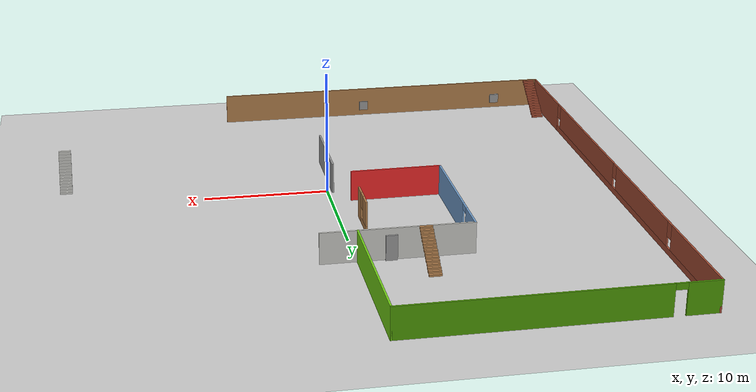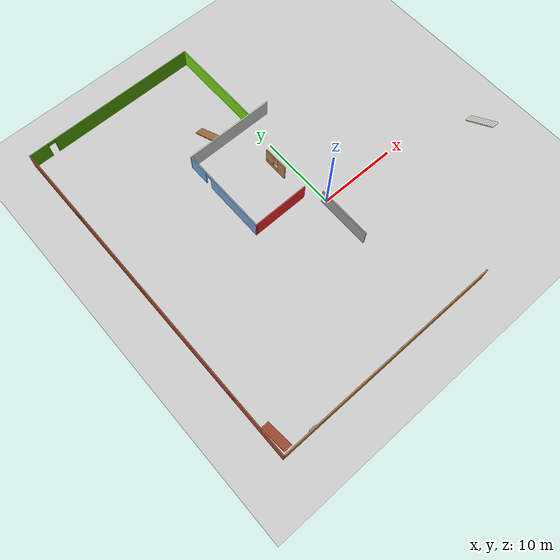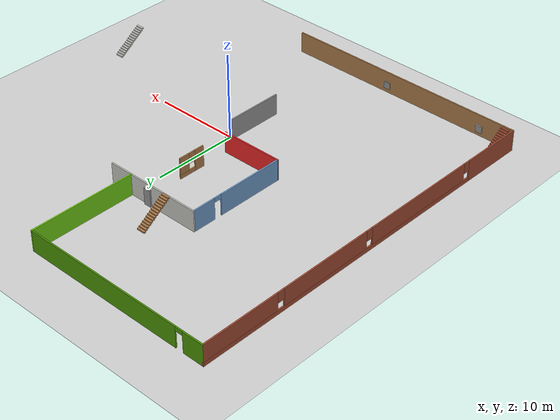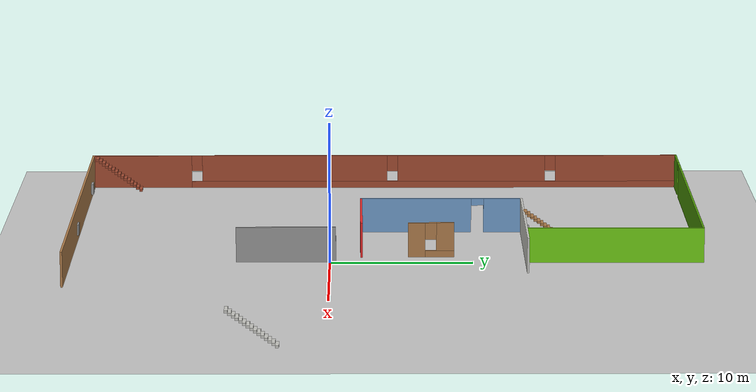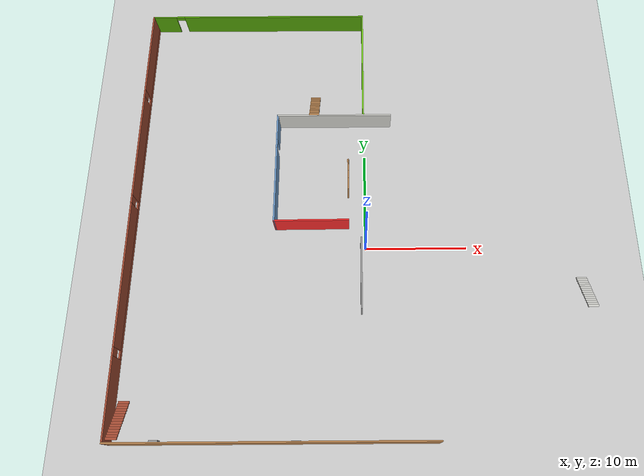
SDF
<sdf version="1.7">
 <world name="default">
  <model name="ground_plane">
   <static>1</static>
   <link name="link">
    <collision name="collision">
     <geometry><plane><normal>0 0 1</normal><size>100 100</size></plane></geometry>
     <surface>
      <contact><collide_bitmask>65535</collide_bitmask></contact>
      <friction><ode><mu>100</mu><mu2>50</mu2></ode></friction>
     </surface>
    </collision>
    <visual name="visual">
     <cast_shadows>0</cast_shadows>
     <geometry><plane><normal>0 0 1</normal><size>100 100</size></plane></geometry>
     <material>
      <script><uri>file://media/materials/scripts/gazebo.material</uri><name>Gazebo/Grey</name></script>
     </material>
    </visual>
   </link>
  </model>
  <model name="pavan">
   <pose>0.117796 3.95267 0 0 -0 0</pose>
   <link name="Door_0">
    <collision name="Door_0_Collision">
     <geometry><box><size>0.9 0.17 2</size></box></geometry>
     <pose>0 0 1 0 -0 0</pose>
    </collision>
    <visual name="Door_0_Visual">
     <pose>0 0 1 0 -0 0</pose>
     <geometry><box><size>0.9 0.17 2</size></box></geometry>
     <material>
      <script><uri>file://media/materials/scripts/gazebo.material</uri><name>Gazebo/Grey</name></script>
     </material>
    </visual>
    <pose>-2.70341 9.99929 0 0 -0 0</pose>
   </link>
   <link name="Stairs_1">
    <visual name="Stairs_1_Visual_0">
     <pose>-22.2721 -18.5444 0.083333 0 -0 0</pose>
     <geometry><box><size>1 0.233333 0.166667</size></box></geometry>
     <material>
      <script><uri>file://media/materials/scripts/gazebo.material</uri><name>Gazebo/Bricks</name></script>
      <ambient>1 1 1 1</ambient>
     </material>
     <meta><layer>0</layer></meta>
    </visual>
    <collision name="Stairs_1_Collision_0">
     <geometry><box><size>1 0.233333 0.166667</size></box></geometry>
     <pose>-22.2721 -18.5444 0.083333 0 -0 0</pose>
    </collision>
    <visual name="Stairs_1_Visual_1">
     <pose>-22.2721 -18.7777 0.25 0 -0 0</pose>
     <geometry><box><size>1 0.233333 0.166667</size></box></geometry>
     <material>
      <script><uri>file://media/materials/scripts/gazebo.material</uri><name>Gazebo/Bricks</name></script>
      <ambient>1 1 1 1</ambient>
     </material>
     <meta><layer>0</layer></meta>
    </visual>
    <collision name="Stairs_1_Collision_1">
     <geometry><box><size>1 0.233333 0.166667</size></box></geometry>
     <pose>-22.2721 -18.7777 0.25 0 -0 0</pose>
    </collision>
    <visual name="Stairs_1_Visual_2">
     <pose>-22.2721 -19.0111 0.416667 0 -0 0</pose>
     <geometry><box><size>1 0.233333 0.166667</size></box></geometry>
     <material>
      <script><uri>file://media/materials/scripts/gazebo.material</uri><name>Gazebo/Bricks</name></script>
      <ambient>1 1 1 1</ambient>
     </material>
     <meta><layer>0</layer></meta>
    </visual>
    <collision name="Stairs_1_Collision_2">
     <geometry><box><size>1 0.233333 0.166667</size></box></geometry>
     <pose>-22.2721 -19.0111 0.416667 0 -0 0</pose>
    </collision>
    <visual name="Stairs_1_Visual_3">
     <pose>-22.2721 -19.2444 0.583333 0 -0 0</pose>
     <geometry><box><size>1 0.233333 0.166667</size></box></geometry>
     <material>
      <script><uri>file://media/materials/scripts/gazebo.material</uri><name>Gazebo/Bricks</name></script>
      <ambient>1 1 1 1</ambient>
     </material>
     <meta><layer>0</layer></meta>
    </visual>
    <collision name="Stairs_1_Collision_3">
     <geometry><box><size>1 0.233333 0.166667</size></box></geometry>
     <pose>-22.2721 -19.2444 0.583333 0 -0 0</pose>
    </collision>
    <visual name="Stairs_1_Visual_4">
     <pose>-22.2721 -19.4777 0.75 0 -0 0</pose>
     <geometry><box><size>1 0.233333 0.166667</size></box></geometry>
     <material>
      <script><uri>file://media/materials/scripts/gazebo.material</uri><name>Gazebo/Bricks</name></script>
      <ambient>1 1 1 1</ambient>
     </material>
     <meta><layer>0</layer></meta>
    </visual>
    <collision name="Stairs_1_Collision_4">
     <geometry><box><size>1 0.233333 0.166667</size></box></geometry>
     <pose>-22.2721 -19.4777 0.75 0 -0 0</pose>
    </collision>
    <visual name="Stairs_1_Visual_5">
     <pose>-22.2721 -19.7111 0.916667 0 -0 0</pose>
     <geometry><box><size>1 0.233333 0.166667</size></box></geometry>
     <material>
      <script><uri>file://media/materials/scripts/gazebo.material</uri><name>Gazebo/Bricks</name></script>
      <ambient>1 1 1 1</ambient>
     </material>
     <meta><layer>0</layer></meta>
    </visual>
    <collision name="Stairs_1_Collision_5">
     <geometry><box><size>1 0.233333 0.166667</size></box></geometry>
     <pose>-22.2721 -19.7111 0.916667 0 -0 0</pose>
    </collision>
    <visual name="Stairs_1_Visual_6">
     <pose>-22.2721 -19.9444 1.08333 0 -0 0</pose>
     <geometry><box><size>1 0.233333 0.166667</size></box></geometry>
     <material>
      <script><uri>file://media/materials/scripts/gazebo.material</uri><name>Gazebo/Bricks</name></script>
      <ambient>1 1 1 1</ambient>
     </material>
     <meta><layer>0</layer></meta>
    </visual>
    <collision name="Stairs_1_Collision_6">
     <geometry><box><size>1 0.233333 0.166667</size></box></geometry>
     <pose>-22.2721 -19.9444 1.08333 0 -0 0</pose>
    </collision>
    <visual name="Stairs_1_Visual_7">
     <pose>-22.2721 -20.1777 1.25 0 -0 0</pose>
     <geometry><box><size>1 0.233333 0.166667</size></box></geometry>
     <material>
      <script><uri>file://media/materials/scripts/gazebo.material</uri><name>Gazebo/Bricks</name></script>
      <ambient>1 1 1 1</ambient>
     </material>
     <meta><layer>0</layer></meta>
    </visual>
    <collision name="Stairs_1_Collision_7">
     <geometry><box><size>1 0.233333 0.166667</size></box></geometry>
     <pose>-22.2721 -20.1777 1.25 0 -0 0</pose>
    </collision>
    <visual name="Stairs_1_Visual_8">
     <pose>-22.2721 -20.4111 1.41667 0 -0 0</pose>
     <geometry><box><size>1 0.233333 0.166667</size></box></geometry>
     <material>
      <script><uri>file://media/materials/scripts/gazebo.material</uri><name>Gazebo/Bricks</name></script>
      <ambient>1 1 1 1</ambient>
     </material>
     <meta><layer>0</layer></meta>
    </visual>
    <collision name="Stairs_1_Collision_8">
     <geometry><box><size>1 0.233333 0.166667</size></box></geometry>
     <pose>-22.2721 -20.4111 1.41667 0 -0 0</pose>
    </collision>
    <visual name="Stairs_1_Visual_9">
     <pose>-22.2721 -20.6444 1.58333 0 -0 0</pose>
     <geometry><box><size>1 0.233333 0.166667</size></box></geometry>
     <material>
      <script><uri>file://media/materials/scripts/gazebo.material</uri><name>Gazebo/Bricks</name></script>
      <ambient>1 1 1 1</ambient>
     </material>
     <meta><layer>0</layer></meta>
    </visual>
    <collision name="Stairs_1_Collision_9">
     <geometry><box><size>1 0.233333 0.166667</size></box></geometry>
     <pose>-22.2721 -20.6444 1.58333 0 -0 0</pose>
    </collision>
    <visual name="Stairs_1_Visual_10">
     <pose>-22.2721 -20.8777 1.75 0 -0 0</pose>
     <geometry><box><size>1 0.233333 0.166667</size></box></geometry>
     <material>
      <script><uri>file://media/materials/scripts/gazebo.material</uri><name>Gazebo/Bricks</name></script>
      <ambient>1 1 1 1</ambient>
     </material>
     <meta><layer>0</layer></meta>
    </visual>
    <collision name="Stairs_1_Collision_10">
     <geometry><box><size>1 0.233333 0.166667</size></box></geometry>
     <pose>-22.2721 -20.8777 1.75 0 -0 0</pose>
    </collision>
    <visual name="Stairs_1_Visual_11">
     <pose>-22.2721 -21.1111 1.91667 0 -0 0</pose>
     <geometry><box><size>1 0.233333 0.166667</size></box></geometry>
     <material>
      <script><uri>file://media/materials/scripts/gazebo.material</uri><name>Gazebo/Bricks</name></script>
      <ambient>1 1 1 1</ambient>
     </material>
     <meta><layer>0</layer></meta>
    </visual>
    <collision name="Stairs_1_Collision_11">
     <geometry><box><size>1 0.233333 0.166667</size></box></geometry>
     <pose>-22.2721 -21.1111 1.91667 0 -0 0</pose>
    </collision>
    <visual name="Stairs_1_Visual_12">
     <pose>-22.2721 -21.3444 2.08333 0 -0 0</pose>
     <geometry><box><size>1 0.233333 0.166667</size></box></geometry>
     <material>
      <script><uri>file://media/materials/scripts/gazebo.material</uri><name>Gazebo/Bricks</name></script>
      <ambient>1 1 1 1</ambient>
     </material>
     <meta><layer>0</layer></meta>
    </visual>
    <collision name="Stairs_1_Collision_12">
     <geometry><box><size>1 0.233333 0.166667</size></box></geometry>
     <pose>-22.2721 -21.3444 2.08333 0 -0 0</pose>
    </collision>
    <visual name="Stairs_1_Visual_13">
     <pose>-22.2721 -21.5777 2.25 0 -0 0</pose>
     <geometry><box><size>1 0.233333 0.166667</size></box></geometry>
     <material>
      <script><uri>file://media/materials/scripts/gazebo.material</uri><name>Gazebo/Bricks</name></script>
      <ambient>1 1 1 1</ambient>
     </material>
     <meta><layer>0</layer></meta>
    </visual>
    <collision name="Stairs_1_Collision_13">
     <geometry><box><size>1 0.233333 0.166667</size></box></geometry>
     <pose>-22.2721 -21.5777 2.25 0 -0 0</pose>
    </collision>
    <visual name="Stairs_1_Visual_14">
     <pose>-22.2721 -21.8111 2.41667 0 -0 0</pose>
     <geometry><box><size>1 0.233333 0.166667</size></box></geometry>
     <material>
      <script><uri>file://media/materials/scripts/gazebo.material</uri><name>Gazebo/Bricks</name></script>
      <ambient>1 1 1 1</ambient>
     </material>
     <meta><layer>0</layer></meta>
    </visual>
    <collision name="Stairs_1_Collision_14">
     <geometry><box><size>1 0.233333 0.166667</size></box></geometry>
     <pose>-22.2721 -21.8111 2.41667 0 -0 0</pose>
    </collision>
   </link>
   <link name="Stairs_2">
    <visual name="Stairs_2_Visual_0">
     <pose>-5.2798 13.213 0.083333 0 -0 0</pose>
     <geometry><box><size>1 0.233333 0.166667</size></box></geometry>
     <material>
      <script><uri>file://media/materials/scripts/gazebo.material</uri><name>Gazebo/Wood</name></script>
      <ambient>1 1 1 1</ambient>
     </material>
     <meta><layer>0</layer></meta>
    </visual>
    <collision name="Stairs_2_Collision_0">
     <geometry><box><size>1 0.233333 0.166667</size></box></geometry>
     <pose>-5.2798 13.213 0.083333 0 -0 0</pose>
    </collision>
    <visual name="Stairs_2_Visual_1">
     <pose>-5.2798 12.9797 0.25 0 -0 0</pose>
     <geometry><box><size>1 0.233333 0.166667</size></box></geometry>
     <material>
      <script><uri>file://media/materials/scripts/gazebo.material</uri><name>Gazebo/Wood</name></script>
      <ambient>1 1 1 1</ambient>
     </material>
     <meta><layer>0</layer></meta>
    </visual>
    <collision name="Stairs_2_Collision_1">
     <geometry><box><size>1 0.233333 0.166667</size></box></geometry>
     <pose>-5.2798 12.9797 0.25 0 -0 0</pose>
    </collision>
    <visual name="Stairs_2_Visual_2">
     <pose>-5.2798 12.7463 0.416667 0 -0 0</pose>
     <geometry><box><size>1 0.233333 0.166667</size></box></geometry>
     <material>
      <script><uri>file://media/materials/scripts/gazebo.material</uri><name>Gazebo/Wood</name></script>
      <ambient>1 1 1 1</ambient>
     </material>
     <meta><layer>0</layer></meta>
    </visual>
    <collision name="Stairs_2_Collision_2">
     <geometry><box><size>1 0.233333 0.166667</size></box></geometry>
     <pose>-5.2798 12.7463 0.416667 0 -0 0</pose>
    </collision>
    <visual name="Stairs_2_Visual_3">
     <pose>-5.2798 12.513 0.583333 0 -0 0</pose>
     <geometry><box><size>1 0.233333 0.166667</size></box></geometry>
     <material>
      <script><uri>file://media/materials/scripts/gazebo.material</uri><name>Gazebo/Wood</name></script>
      <ambient>1 1 1 1</ambient>
     </material>
     <meta><layer>0</layer></meta>
    </visual>
    <collision name="Stairs_2_Collision_3">
     <geometry><box><size>1 0.233333 0.166667</size></box></geometry>
     <pose>-5.2798 12.513 0.583333 0 -0 0</pose>
    </collision>
    <visual name="Stairs_2_Visual_4">
     <pose>-5.2798 12.2797 0.75 0 -0 0</pose>
     <geometry><box><size>1 0.233333 0.166667</size></box></geometry>
     <material>
      <script><uri>file://media/materials/scripts/gazebo.material</uri><name>Gazebo/Wood</name></script>
      <ambient>1 1 1 1</ambient>
     </material>
     <meta><layer>0</layer></meta>
    </visual>
    <collision name="Stairs_2_Collision_4">
     <geometry><box><size>1 0.233333 0.166667</size></box></geometry>
     <pose>-5.2798 12.2797 0.75 0 -0 0</pose>
    </collision>
    <visual name="Stairs_2_Visual_5">
     <pose>-5.2798 12.0463 0.916667 0 -0 0</pose>
     <geometry><box><size>1 0.233333 0.166667</size></box></geometry>
     <material>
      <script><uri>file://media/materials/scripts/gazebo.material</uri><name>Gazebo/Wood</name></script>
      <ambient>1 1 1 1</ambient>
     </material>
     <meta><layer>0</layer></meta>
    </visual>
    <collision name="Stairs_2_Collision_5">
     <geometry><box><size>1 0.233333 0.166667</size></box></geometry>
     <pose>-5.2798 12.0463 0.916667 0 -0 0</pose>
    </collision>
    <visual name="Stairs_2_Visual_6">
     <pose>-5.2798 11.813 1.08333 0 -0 0</pose>
     <geometry><box><size>1 0.233333 0.166667</size></box></geometry>
     <material>
      <script><uri>file://media/materials/scripts/gazebo.material</uri><name>Gazebo/Wood</name></script>
      <ambient>1 1 1 1</ambient>
     </material>
     <meta><layer>0</layer></meta>
    </visual>
    <collision name="Stairs_2_Collision_6">
     <geometry><box><size>1 0.233333 0.166667</size></box></geometry>
     <pose>-5.2798 11.813 1.08333 0 -0 0</pose>
    </collision>
    <visual name="Stairs_2_Visual_7">
     <pose>-5.2798 11.5797 1.25 0 -0 0</pose>
     <geometry><box><size>1 0.233333 0.166667</size></box></geometry>
     <material>
      <script><uri>file://media/materials/scripts/gazebo.material</uri><name>Gazebo/Wood</name></script>
      <ambient>1 1 1 1</ambient>
     </material>
     <meta><layer>0</layer></meta>
    </visual>
    <collision name="Stairs_2_Collision_7">
     <geometry><box><size>1 0.233333 0.166667</size></box></geometry>
     <pose>-5.2798 11.5797 1.25 0 -0 0</pose>
    </collision>
    <visual name="Stairs_2_Visual_8">
     <pose>-5.2798 11.3463 1.41667 0 -0 0</pose>
     <geometry><box><size>1 0.233333 0.166667</size></box></geometry>
     <material>
      <script><uri>file://media/materials/scripts/gazebo.material</uri><name>Gazebo/Wood</name></script>
      <ambient>1 1 1 1</ambient>
     </material>
     <meta><layer>0</layer></meta>
    </visual>
    <collision name="Stairs_2_Collision_8">
     <geometry><box><size>1 0.233333 0.166667</size></box></geometry>
     <pose>-5.2798 11.3463 1.41667 0 -0 0</pose>
    </collision>
    <visual name="Stairs_2_Visual_9">
     <pose>-5.2798 11.113 1.58333 0 -0 0</pose>
     <geometry><box><size>1 0.233333 0.166667</size></box></geometry>
     <material>
      <script><uri>file://media/materials/scripts/gazebo.material</uri><name>Gazebo/Wood</name></script>
      <ambient>1 1 1 1</ambient>
     </material>
     <meta><layer>0</layer></meta>
    </visual>
    <collision name="Stairs_2_Collision_9">
     <geometry><box><size>1 0.233333 0.166667</size></box></geometry>
     <pose>-5.2798 11.113 1.58333 0 -0 0</pose>
    </collision>
    <visual name="Stairs_2_Visual_10">
     <pose>-5.2798 10.8797 1.75 0 -0 0</pose>
     <geometry><box><size>1 0.233333 0.166667</size></box></geometry>
     <material>
      <script><uri>file://media/materials/scripts/gazebo.material</uri><name>Gazebo/Wood</name></script>
      <ambient>1 1 1 1</ambient>
     </material>
     <meta><layer>0</layer></meta>
    </visual>
    <collision name="Stairs_2_Collision_10">
     <geometry><box><size>1 0.233333 0.166667</size></box></geometry>
     <pose>-5.2798 10.8797 1.75 0 -0 0</pose>
    </collision>
    <visual name="Stairs_2_Visual_11">
     <pose>-5.2798 10.6463 1.91667 0 -0 0</pose>
     <geometry><box><size>1 0.233333 0.166667</size></box></geometry>
     <material>
      <script><uri>file://media/materials/scripts/gazebo.material</uri><name>Gazebo/Wood</name></script>
      <ambient>1 1 1 1</ambient>
     </material>
     <meta><layer>0</layer></meta>
    </visual>
    <collision name="Stairs_2_Collision_11">
     <geometry><box><size>1 0.233333 0.166667</size></box></geometry>
     <pose>-5.2798 10.6463 1.91667 0 -0 0</pose>
    </collision>
    <visual name="Stairs_2_Visual_12">
     <pose>-5.2798 10.413 2.08333 0 -0 0</pose>
     <geometry><box><size>1 0.233333 0.166667</size></box></geometry>
     <material>
      <script><uri>file://media/materials/scripts/gazebo.material</uri><name>Gazebo/Wood</name></script>
      <ambient>1 1 1 1</ambient>
     </material>
     <meta><layer>0</layer></meta>
    </visual>
    <collision name="Stairs_2_Collision_12">
     <geometry><box><size>1 0.233333 0.166667</size></box></geometry>
     <pose>-5.2798 10.413 2.08333 0 -0 0</pose>
    </collision>
    <visual name="Stairs_2_Visual_13">
     <pose>-5.2798 10.1797 2.25 0 -0 0</pose>
     <geometry><box><size>1 0.233333 0.166667</size></box></geometry>
     <material>
      <script><uri>file://media/materials/scripts/gazebo.material</uri><name>Gazebo/Wood</name></script>
      <ambient>1 1 1 1</ambient>
     </material>
     <meta><layer>0</layer></meta>
    </visual>
    <collision name="Stairs_2_Collision_13">
     <geometry><box><size>1 0.233333 0.166667</size></box></geometry>
     <pose>-5.2798 10.1797 2.25 0 -0 0</pose>
    </collision>
    <visual name="Stairs_2_Visual_14">
     <pose>-5.2798 9.94634 2.41667 0 -0 0</pose>
     <geometry><box><size>1 0.233333 0.166667</size></box></geometry>
     <material>
      <script><uri>file://media/materials/scripts/gazebo.material</uri><name>Gazebo/Wood</name></script>
      <ambient>1 1 1 1</ambient>
     </material>
     <meta><layer>0</layer></meta>
    </visual>
    <collision name="Stairs_2_Collision_14">
     <geometry><box><size>1 0.233333 0.166667</size></box></geometry>
     <pose>-5.2798 9.94634 2.41667 0 -0 0</pose>
    </collision>
   </link>
   <link name="Stairs_3">
    <visual name="Stairs_3_Visual_0">
     <pose>20.8948 -7.10954 0.083333 0 -0 0</pose>
     <geometry><box><size>1 0.233333 0.166667</size></box></geometry>
     <material>
      <script><uri>file://media/materials/scripts/gazebo.material</uri><name>Gazebo/CeilingTiled</name></script>
      <ambient>1 1 1 1</ambient>
     </material>
     <meta><layer>0</layer></meta>
    </visual>
    <collision name="Stairs_3_Collision_0">
     <geometry><box><size>1 0.233333 0.166667</size></box></geometry>
     <pose>20.8948 -7.10954 0.083333 0 -0 0</pose>
    </collision>
    <visual name="Stairs_3_Visual_1">
     <pose>20.8948 -7.34288 0.25 0 -0 0</pose>
     <geometry><box><size>1 0.233333 0.166667</size></box></geometry>
     <material>
      <script><uri>file://media/materials/scripts/gazebo.material</uri><name>Gazebo/CeilingTiled</name></script>
      <ambient>1 1 1 1</ambient>
     </material>
     <meta><layer>0</layer></meta>
    </visual>
    <collision name="Stairs_3_Collision_1">
     <geometry><box><size>1 0.233333 0.166667</size></box></geometry>
     <pose>20.8948 -7.34288 0.25 0 -0 0</pose>
    </collision>
    <visual name="Stairs_3_Visual_2">
     <pose>20.8948 -7.57621 0.416667 0 -0 0</pose>
     <geometry><box><size>1 0.233333 0.166667</size></box></geometry>
     <material>
      <script><uri>file://media/materials/scripts/gazebo.material</uri><name>Gazebo/CeilingTiled</name></script>
      <ambient>1 1 1 1</ambient>
     </material>
     <meta><layer>0</layer></meta>
    </visual>
    <collision name="Stairs_3_Collision_2">
     <geometry><box><size>1 0.233333 0.166667</size></box></geometry>
     <pose>20.8948 -7.57621 0.416667 0 -0 0</pose>
    </collision>
    <visual name="Stairs_3_Visual_3">
     <pose>20.8948 -7.80954 0.583333 0 -0 0</pose>
     <geometry><box><size>1 0.233333 0.166667</size></box></geometry>
     <material>
      <script><uri>file://media/materials/scripts/gazebo.material</uri><name>Gazebo/CeilingTiled</name></script>
      <ambient>1 1 1 1</ambient>
     </material>
     <meta><layer>0</layer></meta>
    </visual>
    <collision name="Stairs_3_Collision_3">
     <geometry><box><size>1 0.233333 0.166667</size></box></geometry>
     <pose>20.8948 -7.80954 0.583333 0 -0 0</pose>
    </collision>
    <visual name="Stairs_3_Visual_4">
     <pose>20.8948 -8.04287 0.75 0 -0 0</pose>
     <geometry><box><size>1 0.233333 0.166667</size></box></geometry>
     <material>
      <script><uri>file://media/materials/scripts/gazebo.material</uri><name>Gazebo/CeilingTiled</name></script>
      <ambient>1 1 1 1</ambient>
     </material>
     <meta><layer>0</layer></meta>
    </visual>
    <collision name="Stairs_3_Collision_4">
     <geometry><box><size>1 0.233333 0.166667</size></box></geometry>
     <pose>20.8948 -8.04287 0.75 0 -0 0</pose>
    </collision>
    <visual name="Stairs_3_Visual_5">
     <pose>20.8948 -8.27621 0.916667 0 -0 0</pose>
     <geometry><box><size>1 0.233333 0.166667</size></box></geometry>
     <material>
      <script><uri>file://media/materials/scripts/gazebo.material</uri><name>Gazebo/CeilingTiled</name></script>
      <ambient>1 1 1 1</ambient>
     </material>
     <meta><layer>0</layer></meta>
    </visual>
    <collision name="Stairs_3_Collision_5">
     <geometry><box><size>1 0.233333 0.166667</size></box></geometry>
     <pose>20.8948 -8.27621 0.916667 0 -0 0</pose>
    </collision>
    <visual name="Stairs_3_Visual_6">
     <pose>20.8948 -8.50954 1.08333 0 -0 0</pose>
     <geometry><box><size>1 0.233333 0.166667</size></box></geometry>
     <material>
      <script><uri>file://media/materials/scripts/gazebo.material</uri><name>Gazebo/CeilingTiled</name></script>
      <ambient>1 1 1 1</ambient>
     </material>
     <meta><layer>0</layer></meta>
    </visual>
    <collision name="Stairs_3_Collision_6">
     <geometry><box><size>1 0.233333 0.166667</size></box></geometry>
     <pose>20.8948 -8.50954 1.08333 0 -0 0</pose>
    </collision>
    <visual name="Stairs_3_Visual_7">
     <pose>20.8948 -8.74287 1.25 0 -0 0</pose>
     <geometry><box><size>1 0.233333 0.166667</size></box></geometry>
     <material>
      <script><uri>file://media/materials/scripts/gazebo.material</uri><name>Gazebo/CeilingTiled</name></script>
      <ambient>1 1 1 1</ambient>
     </material>
     <meta><layer>0</layer></meta>
    </visual>
    <collision name="Stairs_3_Collision_7">
     <geometry><box><size>1 0.233333 0.166667</size></box></geometry>
     <pose>20.8948 -8.74287 1.25 0 -0 0</pose>
    </collision>
    <visual name="Stairs_3_Visual_8">
     <pose>20.8948 -8.97621 1.41667 0 -0 0</pose>
     <geometry><box><size>1 0.233333 0.166667</size></box></geometry>
     <material>
      <script><uri>file://media/materials/scripts/gazebo.material</uri><name>Gazebo/CeilingTiled</name></script>
      <ambient>1 1 1 1</ambient>
     </material>
     <meta><layer>0</layer></meta>
    </visual>
    <collision name="Stairs_3_Collision_8">
     <geometry><box><size>1 0.233333 0.166667</size></box></geometry>
     <pose>20.8948 -8.97621 1.41667 0 -0 0</pose>
    </collision>
    <visual name="Stairs_3_Visual_9">
     <pose>20.8948 -9.20954 1.58333 0 -0 0</pose>
     <geometry><box><size>1 0.233333 0.166667</size></box></geometry>
     <material>
      <script><uri>file://media/materials/scripts/gazebo.material</uri><name>Gazebo/CeilingTiled</name></script>
      <ambient>1 1 1 1</ambient>
     </material>
     <meta><layer>0</layer></meta>
    </visual>
    <collision name="Stairs_3_Collision_9">
     <geometry><box><size>1 0.233333 0.166667</size></box></geometry>
     <pose>20.8948 -9.20954 1.58333 0 -0 0</pose>
    </collision>
    <visual name="Stairs_3_Visual_10">
     <pose>20.8948 -9.44287 1.75 0 -0 0</pose>
     <geometry><box><size>1 0.233333 0.166667</size></box></geometry>
     <material>
      <script><uri>file://media/materials/scripts/gazebo.material</uri><name>Gazebo/CeilingTiled</name></script>
      <ambient>1 1 1 1</ambient>
     </material>
     <meta><layer>0</layer></meta>
    </visual>
    <collision name="Stairs_3_Collision_10">
     <geometry><box><size>1 0.233333 0.166667</size></box></geometry>
     <pose>20.8948 -9.44287 1.75 0 -0 0</pose>
    </collision>
    <visual name="Stairs_3_Visual_11">
     <pose>20.8948 -9.67621 1.91667 0 -0 0</pose>
     <geometry><box><size>1 0.233333 0.166667</size></box></geometry>
     <material>
      <script><uri>file://media/materials/scripts/gazebo.material</uri><name>Gazebo/CeilingTiled</name></script>
      <ambient>1 1 1 1</ambient>
     </material>
     <meta><layer>0</layer></meta>
    </visual>
    <collision name="Stairs_3_Collision_11">
     <geometry><box><size>1 0.233333 0.166667</size></box></geometry>
     <pose>20.8948 -9.67621 1.91667 0 -0 0</pose>
    </collision>
    <visual name="Stairs_3_Visual_12">
     <pose>20.8948 -9.90954 2.08333 0 -0 0</pose>
     <geometry><box><size>1 0.233333 0.166667</size></box></geometry>
     <material>
      <script><uri>file://media/materials/scripts/gazebo.material</uri><name>Gazebo/CeilingTiled</name></script>
      <ambient>1 1 1 1</ambient>
     </material>
     <meta><layer>0</layer></meta>
    </visual>
    <collision name="Stairs_3_Collision_12">
     <geometry><box><size>1 0.233333 0.166667</size></box></geometry>
     <pose>20.8948 -9.90954 2.08333 0 -0 0</pose>
    </collision>
    <visual name="Stairs_3_Visual_13">
     <pose>20.8948 -10.1429 2.25 0 -0 0</pose>
     <geometry><box><size>1 0.233333 0.166667</size></box></geometry>
     <material>
      <script><uri>file://media/materials/scripts/gazebo.material</uri><name>Gazebo/CeilingTiled</name></script>
      <ambient>1 1 1 1</ambient>
     </material>
     <meta><layer>0</layer></meta>
    </visual>
    <collision name="Stairs_3_Collision_13">
     <geometry><box><size>1 0.233333 0.166667</size></box></geometry>
     <pose>20.8948 -10.1429 2.25 0 -0 0</pose>
    </collision>
    <visual name="Stairs_3_Visual_14">
     <pose>20.8948 -10.3762 2.41667 0 -0 0</pose>
     <geometry><box><size>1 0.233333 0.166667</size></box></geometry>
     <material>
      <script><uri>file://media/materials/scripts/gazebo.material</uri><name>Gazebo/CeilingTiled</name></script>
      <ambient>1 1 1 1</ambient>
     </material>
     <meta><layer>0</layer></meta>
    </visual>
    <collision name="Stairs_3_Collision_14">
     <geometry><box><size>1 0.233333 0.166667</size></box></geometry>
     <pose>20.8948 -10.3762 2.41667 0 -0 0</pose>
    </collision>
   </link>
   <link name="Wall_14">
    <collision name="Wall_14_Collision">
     <geometry><box><size>7 0.15 2.5</size></box></geometry>
     <pose>0 0 1.25 0 -0 0</pose>
    </collision>
    <visual name="Wall_14_Visual">
     <pose>0 0 1.25 0 -0 0</pose>
     <geometry><box><size>7 0.15 2.5</size></box></geometry>
     <material>
      <script><uri>file://media/materials/scripts/gazebo.material</uri><name>Gazebo/Grey</name></script>
      <ambient>0.333333 0.341176 0.32549 1</ambient>
     </material>
     <meta><layer>0</layer></meta>
    </visual>
    <pose>-0.534699 -7.02943 0 0 -0 -1.5708</pose>
   </link>
   <link name="Wall_21">
    <collision name="Wall_21_Collision">
     <geometry><box><size>29.5 0.15 2.5</size></box></geometry>
     <pose>0 0 1.25 0 -0 0</pose>
    </collision>
    <visual name="Wall_21_Visual">
     <pose>0 0 1.25 0 -0 0</pose>
     <geometry><box><size>29.5 0.15 2.5</size></box></geometry>
     <material>
      <script><uri>file://media/materials/scripts/gazebo.material</uri><name>Gazebo/Wood</name></script>
      <ambient>1 1 1 1</ambient>
     </material>
     <meta><layer>0</layer></meta>
    </visual>
    <pose>-8.3903 -22.175 0 0 -0 3.14159</pose>
   </link>
   <link name="Wall_22">
    <pose>-23.0653 -0 0 0 -0 1.5708</pose>
    <visual name="Wall_22_Visual_0">
     <pose>-18.4797 0 1.25 0 -0 0</pose>
     <geometry><box><size>7.54061 0.15 2.5</size></box></geometry>
     <material>
      <script><uri>file://media/materials/scripts/gazebo.material</uri><name>Gazebo/Bricks</name></script>
      <ambient>1 1 1 1</ambient>
     </material>
     <meta><layer>0</layer></meta>
    </visual>
    <collision name="Wall_22_Collision_0">
     <geometry><box><size>7.54061 0.15 2.5</size></box></geometry>
     <pose>-18.4797 0 1.25 0 -0 0</pose>
    </collision>
    <visual name="Wall_22_Visual_1">
     <pose>3.77031 0 0.25 0 -0 0</pose>
     <geometry><box><size>36.9594 0.15 0.5</size></box></geometry>
     <material>
      <script><uri>file://media/materials/scripts/gazebo.material</uri><name>Gazebo/Bricks</name></script>
      <ambient>1 1 1 1</ambient>
     </material>
     <meta><layer>0</layer></meta>
    </visual>
    <collision name="Wall_22_Collision_1">
     <geometry><box><size>36.9594 0.15 0.5</size></box></geometry>
     <pose>3.77031 0 0.25 0 -0 0</pose>
    </collision>
    <visual name="Wall_22_Visual_2">
     <pose>-6.86133 0 1.5 0 -0 0</pose>
     <geometry><box><size>14.0961 0.15 2</size></box></geometry>
     <material>
      <script><uri>file://media/materials/scripts/gazebo.material</uri><name>Gazebo/Bricks</name></script>
      <ambient>1 1 1 1</ambient>
     </material>
     <meta><layer>0</layer></meta>
    </visual>
    <collision name="Wall_22_Collision_2">
     <geometry><box><size>14.0961 0.15 2</size></box></geometry>
     <pose>-6.86133 0 1.5 0 -0 0</pose>
    </collision>
    <visual name="Wall_22_Visual_3">
     <pose>6.59837 0 1.5 0 -0 0</pose>
     <geometry><box><size>11.2233 0.15 2</size></box></geometry>
     <material>
      <script><uri>file://media/materials/scripts/gazebo.material</uri><name>Gazebo/Bricks</name></script>
      <ambient>1 1 1 1</ambient>
     </material>
     <meta><layer>0</layer></meta>
    </visual>
    <collision name="Wall_22_Collision_3">
     <geometry><box><size>11.2233 0.15 2</size></box></geometry>
     <pose>6.59837 0 1.5 0 -0 0</pose>
    </collision>
    <visual name="Wall_22_Visual_4">
     <pose>17.63 0 1.5 0 -0 0</pose>
     <geometry><box><size>9.23998 0.15 2</size></box></geometry>
     <material>
      <script><uri>file://media/materials/scripts/gazebo.material</uri><name>Gazebo/Bricks</name></script>
      <ambient>1 1 1 1</ambient>
     </material>
     <meta><layer>0</layer></meta>
    </visual>
    <collision name="Wall_22_Collision_4">
     <geometry><box><size>9.23998 0.15 2</size></box></geometry>
     <pose>17.63 0 1.5 0 -0 0</pose>
    </collision>
    <visual name="Wall_22_Visual_5">
     <pose>-14.3094 0 1.9 0 -0 0</pose>
     <geometry><box><size>0.8 0.15 1.2</size></box></geometry>
     <material>
      <script><uri>file://media/materials/scripts/gazebo.material</uri><name>Gazebo/Bricks</name></script>
      <ambient>1 1 1 1</ambient>
     </material>
     <meta><layer>0</layer></meta>
    </visual>
    <collision name="Wall_22_Collision_5">
     <geometry><box><size>0.8 0.15 1.2</size></box></geometry>
     <pose>-14.3094 0 1.9 0 -0 0</pose>
    </collision>
    <visual name="Wall_22_Visual_6">
     <pose>0.586727 0 1.9 0 -0 0</pose>
     <geometry><box><size>0.8 0.15 1.2</size></box></geometry>
     <material>
      <script><uri>file://media/materials/scripts/gazebo.material</uri><name>Gazebo/Bricks</name></script>
      <ambient>1 1 1 1</ambient>
     </material>
     <meta><layer>0</layer></meta>
    </visual>
    <collision name="Wall_22_Collision_6">
     <geometry><box><size>0.8 0.15 1.2</size></box></geometry>
     <pose>0.586727 0 1.9 0 -0 0</pose>
    </collision>
    <visual name="Wall_22_Visual_7">
     <pose>12.61 0 1.9 0 -0 0</pose>
     <geometry><box><size>0.8 0.15 1.2</size></box></geometry>
     <material>
      <script><uri>file://media/materials/scripts/gazebo.material</uri><name>Gazebo/Bricks</name></script>
      <ambient>1 1 1 1</ambient>
     </material>
     <meta><layer>0</layer></meta>
    </visual>
    <collision name="Wall_22_Collision_7">
     <geometry><box><size>0.8 0.15 1.2</size></box></geometry>
     <pose>12.61 0 1.9 0 -0 0</pose>
    </collision>
   </link>
   <link name="Wall_23">
    <pose>-11.6403 22.175 0 0 -0 0</pose>
    <visual name="Wall_23_Visual_0">
     <pose>-10.2308 0 1.25 0 -0 0</pose>
     <geometry><box><size>2.53833 0.15 2.5</size></box></geometry>
     <material>
      <script><uri>file://media/materials/scripts/gazebo.material</uri><name>Gazebo/Grey</name></script>
      <ambient>0.305882 0.603922 0.0235294 1</ambient>
     </material>
     <meta><layer>0</layer></meta>
    </visual>
    <collision name="Wall_23_Collision_0">
     <geometry><box><size>2.53833 0.15 2.5</size></box></geometry>
     <pose>-10.2308 0 1.25 0 -0 0</pose>
    </collision>
    <visual name="Wall_23_Visual_1">
     <pose>1.71917 0 1.25 0 -0 0</pose>
     <geometry><box><size>19.5617 0.15 2.5</size></box></geometry>
     <material>
      <script><uri>file://media/materials/scripts/gazebo.material</uri><name>Gazebo/Grey</name></script>
      <ambient>0.305882 0.603922 0.0235294 1</ambient>
     </material>
     <meta><layer>0</layer></meta>
    </visual>
    <collision name="Wall_23_Collision_1">
     <geometry><box><size>19.5617 0.15 2.5</size></box></geometry>
     <pose>1.71917 0 1.25 0 -0 0</pose>
    </collision>
    <visual name="Wall_23_Visual_2">
     <pose>-8.51167 0 2.25 0 -0 0</pose>
     <geometry><box><size>0.9 0.15 0.5</size></box></geometry>
     <material>
      <script><uri>file://media/materials/scripts/gazebo.material</uri><name>Gazebo/Grey</name></script>
      <ambient>0.305882 0.603922 0.0235294 1</ambient>
     </material>
     <meta><layer>0</layer></meta>
    </visual>
    <collision name="Wall_23_Collision_2">
     <geometry><box><size>0.9 0.15 0.5</size></box></geometry>
     <pose>-8.51167 0 2.25 0 -0 0</pose>
    </collision>
   </link>
   <link name="Wall_24">
    <collision name="Wall_24_Collision">
     <geometry><box><size>12.5 0.15 2.5</size></box></geometry>
     <pose>0 0 1.25 0 -0 0</pose>
    </collision>
    <visual name="Wall_24_Visual">
     <pose>0 0 1.25 0 -0 0</pose>
     <geometry><box><size>12.5 0.15 2.5</size></box></geometry>
     <material>
      <script><uri>file://media/materials/scripts/gazebo.material</uri><name>Gazebo/Grey</name></script>
      <ambient>0.45098 0.823529 0.0862745 1</ambient>
     </material>
     <meta><layer>0</layer></meta>
    </visual>
    <pose>-0.215298 16 0 0 -0 -1.5708</pose>
   </link>
   <link name="Wall_3">
    <pose>-1.77977 3.16124 0 0 -0 1.5708</pose>
    <visual name="Wall_3_Visual_0">
     <pose>-1.02841 0 1.25 0 -0 0</pose>
     <geometry><box><size>1.19319 0.15 2.5</size></box></geometry>
     <material>
      <script><uri>file://media/materials/scripts/gazebo.material</uri><name>Gazebo/Wood</name></script>
      <ambient>1 1 1 1</ambient>
     </material>
     <meta><layer>0</layer></meta>
    </visual>
    <collision name="Wall_3_Collision_0">
     <geometry><box><size>1.19319 0.15 2.5</size></box></geometry>
     <pose>-1.02841 0 1.25 0 -0 0</pose>
    </collision>
    <visual name="Wall_3_Visual_1">
     <pose>0.596593 0 0.25 0 -0 0</pose>
     <geometry><box><size>2.05681 0.15 0.5</size></box></geometry>
     <material>
      <script><uri>file://media/materials/scripts/gazebo.material</uri><name>Gazebo/Wood</name></script>
      <ambient>1 1 1 1</ambient>
     </material>
     <meta><layer>0</layer></meta>
    </visual>
    <collision name="Wall_3_Collision_1">
     <geometry><box><size>2.05681 0.15 0.5</size></box></geometry>
     <pose>0.596593 0 0.25 0 -0 0</pose>
    </collision>
    <visual name="Wall_3_Visual_2">
     <pose>0.996593 0 1.5 0 -0 0</pose>
     <geometry><box><size>1.25681 0.15 2</size></box></geometry>
     <material>
      <script><uri>file://media/materials/scripts/gazebo.material</uri><name>Gazebo/Wood</name></script>
      <ambient>1 1 1 1</ambient>
     </material>
     <meta><layer>0</layer></meta>
    </visual>
    <collision name="Wall_3_Collision_2">
     <geometry><box><size>1.25681 0.15 2</size></box></geometry>
     <pose>0.996593 0 1.5 0 -0 0</pose>
    </collision>
    <visual name="Wall_3_Visual_3">
     <pose>-0.031813 0 1.9 0 -0 0</pose>
     <geometry><box><size>0.8 0.15 1.2</size></box></geometry>
     <material>
      <script><uri>file://media/materials/scripts/gazebo.material</uri><name>Gazebo/Wood</name></script>
      <ambient>1 1 1 1</ambient>
     </material>
     <meta><layer>0</layer></meta>
    </visual>
    <collision name="Wall_3_Collision_3">
     <geometry><box><size>0.8 0.15 1.2</size></box></geometry>
     <pose>-0.031813 0 1.9 0 -0 0</pose>
    </collision>
   </link>
   <link name="Wall_6">
    <collision name="Wall_6_Collision">
     <geometry><box><size>11.75 0.15 2.5</size></box></geometry>
     <pose>0 0 1.25 0 -0 0</pose>
    </collision>
    <visual name="Wall_6_Visual">
     <pose>0 0 1.25 0 -0 0</pose>
     <geometry><box><size>11.75 0.15 2.5</size></box></geometry>
     <material>
      <script><uri>file://media/materials/scripts/gazebo.material</uri><name>Gazebo/CeilingTiled</name></script>
      <ambient>0.435294 0.796078 0.67451 1</ambient>
     </material>
     <meta><layer>0</layer></meta>
    </visual>
    <pose>-3.22977 9.81124 0 0 -0 3.14159</pose>
   </link>
   <link name="Wall_7">
    <pose>-9.02977 4.01124 0 0 -0 -1.5708</pose>
    <visual name="Wall_7_Visual_0">
     <pose>-4.46729 0 1.25 0 -0 0</pose>
     <geometry><box><size>2.81541 0.15 2.5</size></box></geometry>
     <material>
      <script><uri>file://media/materials/scripts/gazebo.material</uri><name>Gazebo/Grey</name></script>
      <ambient>0.447059 0.623529 0.811765 1</ambient>
     </material>
     <meta><layer>0</layer></meta>
    </visual>
    <collision name="Wall_7_Collision_0">
     <geometry><box><size>2.81541 0.15 2.5</size></box></geometry>
     <pose>-4.46729 0 1.25 0 -0 0</pose>
    </collision>
    <visual name="Wall_7_Visual_1">
     <pose>1.85771 0 1.25 0 -0 0</pose>
     <geometry><box><size>8.03459 0.15 2.5</size></box></geometry>
     <material>
      <script><uri>file://media/materials/scripts/gazebo.material</uri><name>Gazebo/Grey</name></script>
      <ambient>0.447059 0.623529 0.811765 1</ambient>
     </material>
     <meta><layer>0</layer></meta>
    </visual>
    <collision name="Wall_7_Collision_1">
     <geometry><box><size>8.03459 0.15 2.5</size></box></geometry>
     <pose>1.85771 0 1.25 0 -0 0</pose>
    </collision>
    <visual name="Wall_7_Visual_2">
     <pose>-2.60959 0 2.25 0 -0 0</pose>
     <geometry><box><size>0.9 0.15 0.5</size></box></geometry>
     <material>
      <script><uri>file://media/materials/scripts/gazebo.material</uri><name>Gazebo/Grey</name></script>
      <ambient>0.447059 0.623529 0.811765 1</ambient>
     </material>
     <meta><layer>0</layer></meta>
    </visual>
    <collision name="Wall_7_Collision_2">
     <geometry><box><size>0.9 0.15 0.5</size></box></geometry>
     <pose>-2.60959 0 2.25 0 -0 0</pose>
    </collision>
   </link>
   <link name="Wall_8">
    <collision name="Wall_8_Collision">
     <geometry><box><size>7.40017 0.15 2.5</size></box></geometry>
     <pose>0 0 1.25 0 -0 0</pose>
    </collision>
    <visual name="Wall_8_Visual">
     <pose>0 0 1.25 0 -0 0</pose>
     <geometry><box><size>7.40017 0.15 2.5</size></box></geometry>
     <material>
      <script><uri>file://media/materials/scripts/gazebo.material</uri><name>Gazebo/Grey</name></script>
      <ambient>0.937255 0.160784 0.160784 1</ambient>
     </material>
     <meta><layer>0</layer></meta>
    </visual>
    <pose>-5.40477 -1.76376 0 0 -0 0.006896</pose>
   </link>
   <link name="Window_10">
    <collision name="Window_10_Collision">
     <geometry><box><size>0.8 0.17 0.8</size></box></geometry>
     <pose>0 0 0.4 0 -0 0</pose>
    </collision>
    <visual name="Window_10_Visual">
     <pose>0 0 0.4 0 -0 0</pose>
     <geometry><box><size>0.8 0.17 0.8</size></box></geometry>
     <material>
      <script><uri>file://media/materials/scripts/gazebo.material</uri><name>Gazebo/Grey</name></script>
     </material>
    </visual>
    <pose>-18.9816 -21.9702 0.5 0 -0 0</pose>
   </link>
   <link name="Window_9">
    <collision name="Window_9_Collision">
     <geometry><box><size>0.8 0.17 0.8</size></box></geometry>
     <pose>0 0 0.4 0 -0 0</pose>
    </collision>
    <visual name="Window_9_Visual">
     <pose>0 0 0.4 0 -0 0</pose>
     <geometry><box><size>0.8 0.17 0.8</size></box></geometry>
     <material>
      <script><uri>file://media/materials/scripts/gazebo.material</uri><name>Gazebo/Grey</name></script>
     </material>
    </visual>
    <pose>-6.42626 -22.0766 0.5 0 -0 0</pose>
   </link>
   <static>1</static>
  </model>
 </world>
</sdf>
